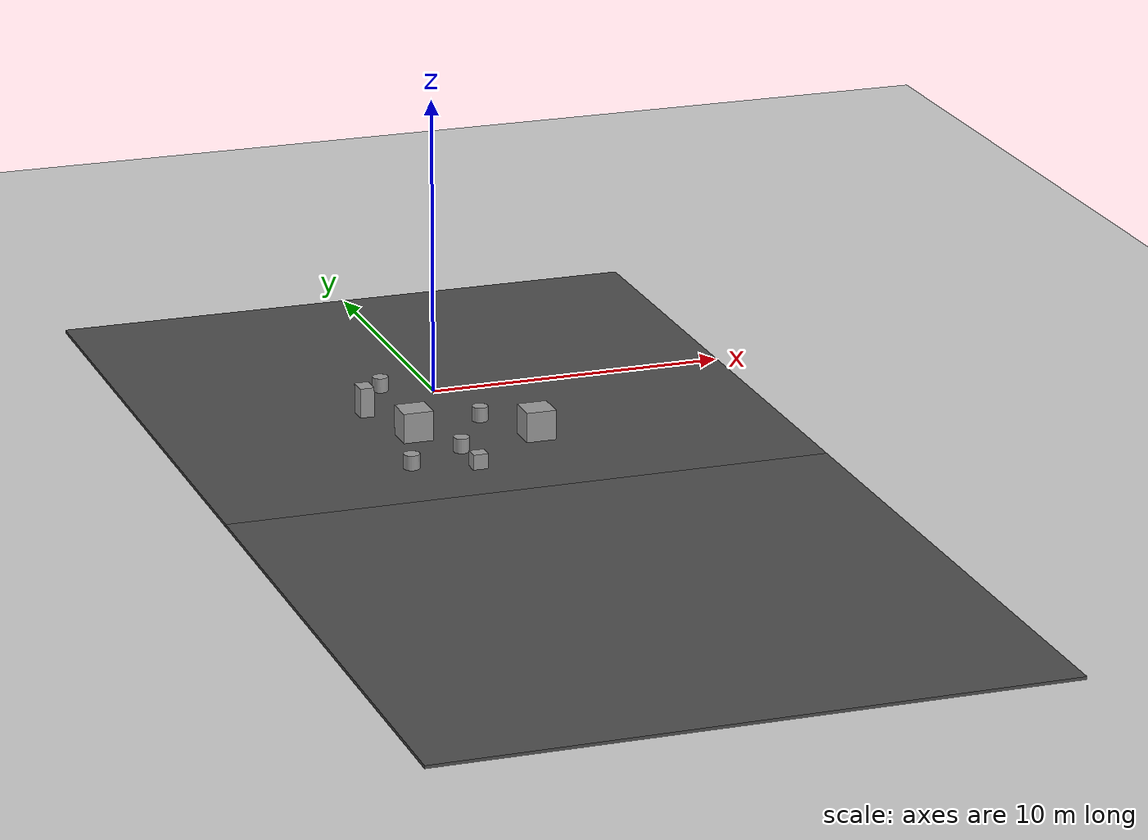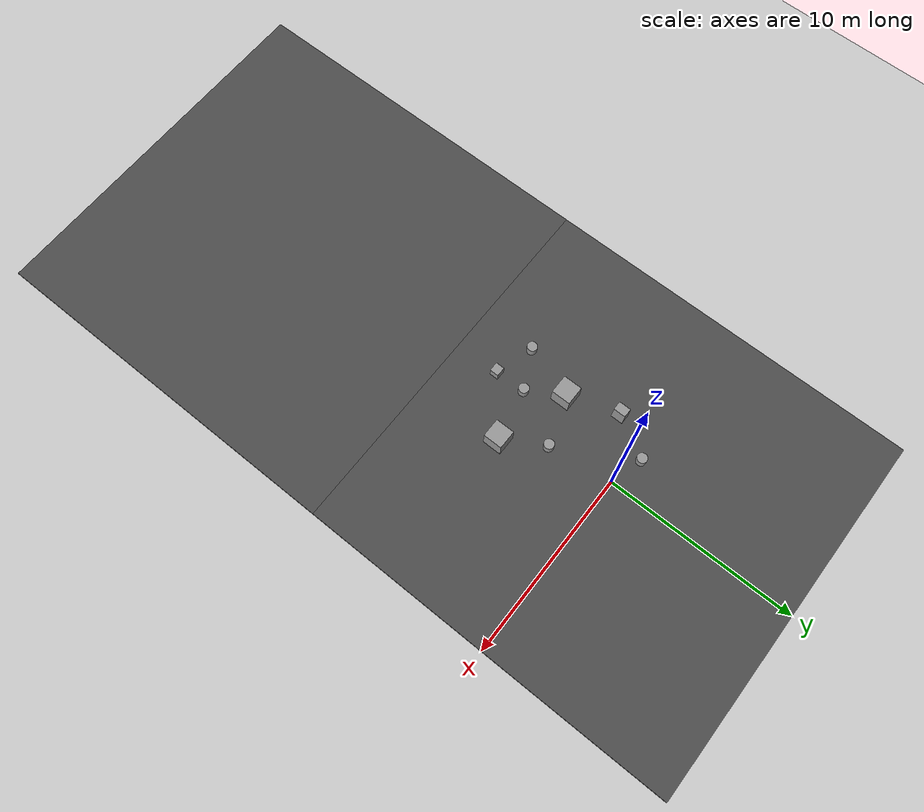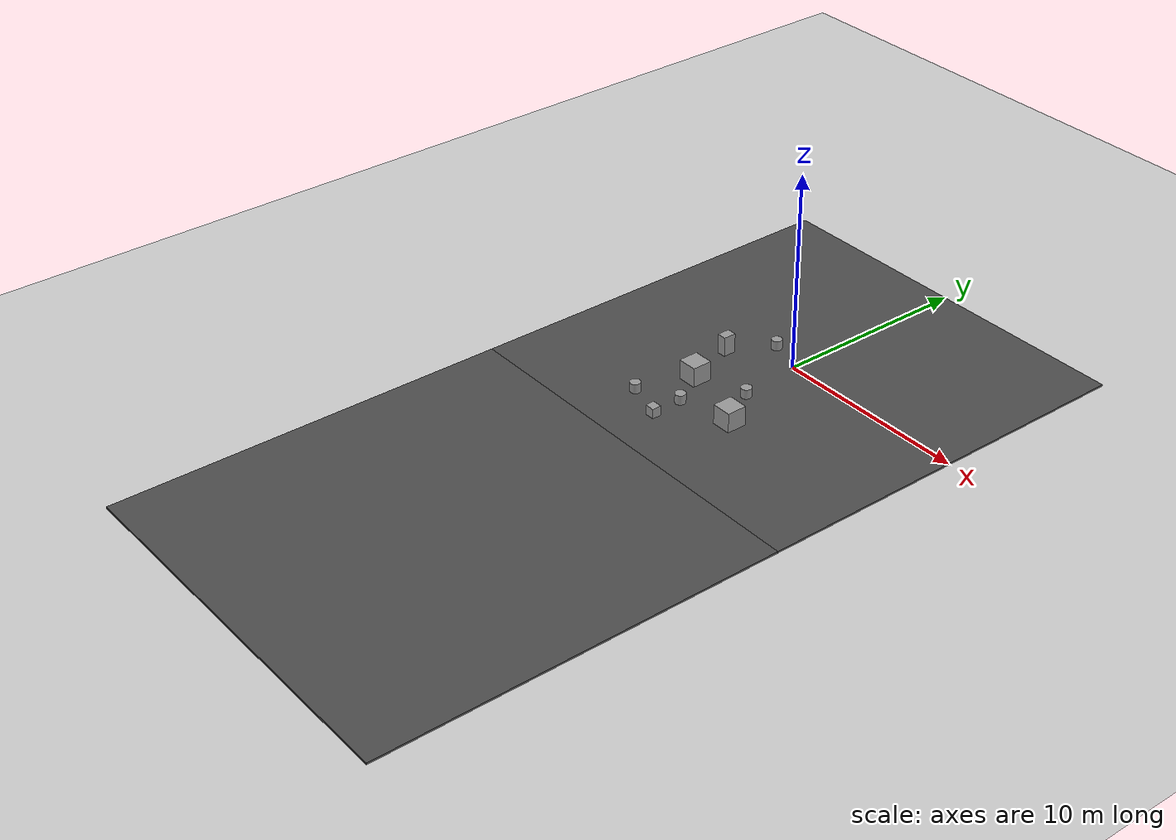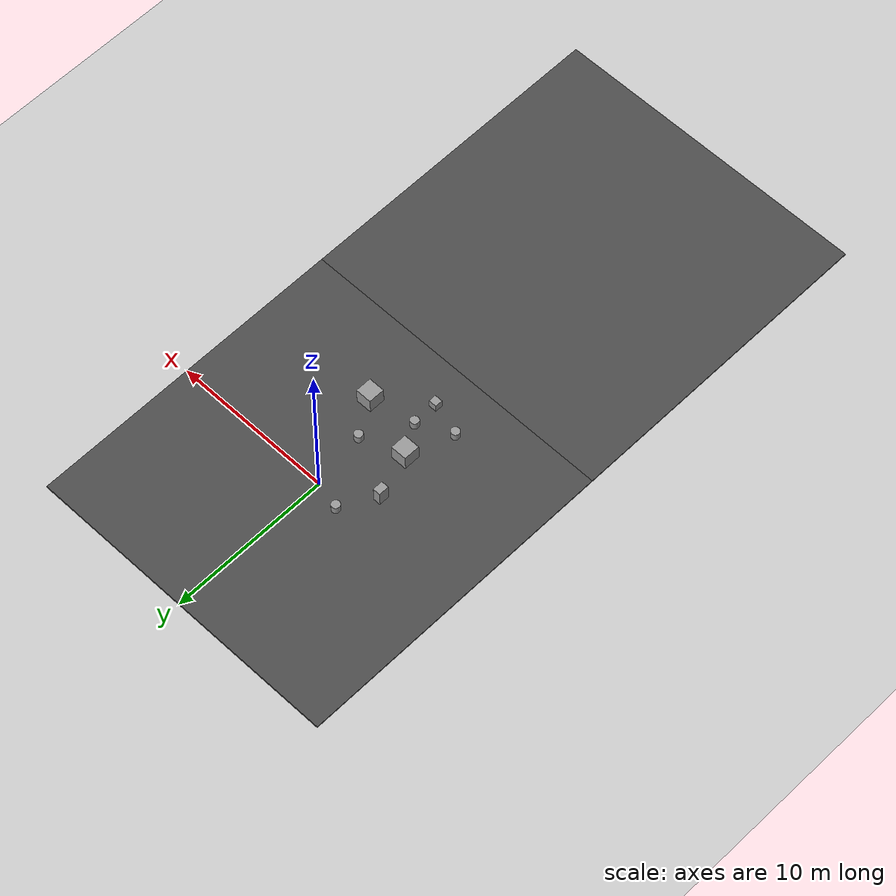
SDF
<sdf version="1.7">
 <world name="default">
  <model name="ground_plane">
   <static>1</static>
   <link name="link">
    <collision name="collision">
     <geometry><plane><normal>0 0 1</normal><size>100 100</size></plane></geometry>
     <surface>
      <contact><collide_bitmask>65535</collide_bitmask></contact>
      <friction><ode><mu>100</mu><mu2>50</mu2></ode></friction>
     </surface>
    </collision>
    <visual name="visual">
     <cast_shadows>0</cast_shadows>
     <geometry><plane><normal>0 0 1</normal><size>100 100</size></plane></geometry>
     <material>
      <script><uri>file://media/materials/scripts/gazebo.material</uri><name>Gazebo/Grey</name></script>
     </material>
    </visual>
   </link>
  </model>
  <model name="asphalt_plane">
   <static>1</static>
   <link name="link">
    <collision name="collision"><geometry><box><size>20 20 0.1</size></box></geometry></collision>
    <visual name="visual">
     <cast_shadows>0</cast_shadows>
     <geometry><box><size>20 20 0.1</size></box></geometry>
     <material>
      <script>
       <uri>model://asphalt_plane/materials/scripts</uri>
       <uri>model://asphalt_plane/materials/textures</uri>
       <name>vrc/asphalt</name>
      </script>
     </material>
    </visual>
   </link>
  </model>
  <model name="asphalt_plane_clone_1">
   <static>1</static>
   <link name="link">
    <collision name="collision"><geometry><box><size>20 20 0.1</size></box></geometry></collision>
    <visual name="visual">
     <cast_shadows>0</cast_shadows>
     <geometry><box><size>20 20 0.1</size></box></geometry>
     <material>
      <script>
       <uri>model://asphalt_plane/materials/scripts</uri>
       <uri>model://asphalt_plane/materials/textures</uri>
       <name>vrc/asphalt</name>
      </script>
     </material>
    </visual>
   </link>
   <pose>0 -20 0 0 -0 0</pose>
  </model>
  <model name="unit_cylinder_clone_1">
   <pose>-1.69362 0.491639 0.294835 0 -0 0.000353</pose>
   <link name="link">
    <inertial>
     <mass>1</mass>
     <inertia><ixx>0.145833</ixx><ixy>0</ixy><ixz>0</ixz><iyy>0.145833</iyy><iyz>0</iyz><izz>0.125</izz></inertia>
    </inertial>
    <collision name="collision">
     <geometry><cylinder><radius>0.264047</radius><length>0.48967</length></cylinder></geometry>
    </collision>
    <visual name="visual">
     <geometry><cylinder><radius>0.264047</radius><length>0.48967</length></cylinder></geometry>
     <material>
      <script><name>Gazebo/Grey</name><uri>file://media/materials/scripts/gazebo.material</uri></script>
     </material>
    </visual>
   </link>
  </model>
  <model name="unit_cylinder_clone_7">
   <pose>0.502169 -3.35697 0.294838 -3e-06 -9e-06 0.000227</pose>
   <link name="link">
    <inertial>
     <mass>1</mass>
     <inertia><ixx>0.145833</ixx><ixy>0</ixy><ixz>0</ixz><iyy>0.145833</iyy><iyz>0</iyz><izz>0.125</izz></inertia>
    </inertial>
    <collision name="collision">
     <geometry><cylinder><radius>0.264047</radius><length>0.48967</length></cylinder></geometry>
    </collision>
    <visual name="visual">
     <geometry><cylinder><radius>0.264047</radius><length>0.48967</length></cylinder></geometry>
     <material>
      <script><name>Gazebo/Grey</name><uri>file://media/materials/scripts/gazebo.material</uri></script>
     </material>
    </visual>
   </link>
  </model>
  <model name="unit_cylinder_clone_9">
   <pose>-1.00002 -5.99998 0.294835 0 -0 0.000156</pose>
   <link name="link">
    <inertial>
     <mass>1</mass>
     <inertia><ixx>0.145833</ixx><ixy>0</ixy><ixz>0</ixz><iyy>0.145833</iyy><iyz>0</iyz><izz>0.125</izz></inertia>
    </inertial>
    <collision name="collision">
     <geometry><cylinder><radius>0.264047</radius><length>0.48967</length></cylinder></geometry>
    </collision>
    <visual name="visual">
     <geometry><cylinder><radius>0.264047</radius><length>0.48967</length></cylinder></geometry>
     <material>
      <script><name>Gazebo/Grey</name><uri>file://media/materials/scripts/gazebo.material</uri></script>
     </material>
    </visual>
   </link>
  </model>
  <model name="unit_cylinder_clone_17">
   <pose>-3.00002 -6.99998 0.294825 0 0 -3.6e-05</pose>
   <link name="link">
    <inertial>
     <mass>1</mass>
     <inertia><ixx>0.145833</ixx><ixy>0</ixy><ixz>0</ixz><iyy>0.145833</iyy><iyz>0</iyz><izz>0.125</izz></inertia>
    </inertial>
    <collision name="collision">
     <geometry><cylinder><radius>0.264047</radius><length>0.48967</length></cylinder></geometry>
    </collision>
    <visual name="visual">
     <geometry><cylinder><radius>0.264047</radius><length>0.48967</length></cylinder></geometry>
     <material>
      <script><name>Gazebo/Grey</name><uri>file://media/materials/scripts/gazebo.material</uri></script>
     </material>
    </visual>
   </link>
  </model>
  <model name="unit_box_0_clone_1_clone_3">
   <pose>-0.962788 -7.60684 0.301356 0 -0 1e-06</pose>
   <link name="link">
    <inertial>
     <mass>1</mass>
     <inertia>
      <ixx>0.166667</ixx>
      <ixy>0</ixy>
      <ixz>0</ixz>
      <iyy>0.166667</iyy>
      <iyz>0</iyz>
      <izz>0.166667</izz>
     </inertia>
    </inertial>
    <collision name="collision">
     <geometry><box><size>0.495294 0.467832 0.502712</size></box></geometry>
    </collision>
    <visual name="visual">
     <geometry><box><size>0.495294 0.467832 0.502712</size></box></geometry>
     <material>
      <script><name>Gazebo/Grey</name><uri>file://media/materials/scripts/gazebo.material</uri></script>
     </material>
    </visual>
   </link>
  </model>
  <model name="unit_box_1">
   <pose>1.73473 -5.44839 0.55 -0 -0 -0</pose>
   <link name="link">
    <inertial>
     <mass>1</mass>
     <inertia>
      <ixx>0.166667</ixx>
      <ixy>0</ixy>
      <ixz>0</ixz>
      <iyy>0.166667</iyy>
      <iyz>0</iyz>
      <izz>0.166667</izz>
     </inertia>
    </inertial>
    <collision name="collision"><geometry><box><size>1 1 1</size></box></geometry></collision>
    <visual name="visual">
     <geometry><box><size>1 1 1</size></box></geometry>
     <material>
      <script><name>Gazebo/Grey</name><uri>file://media/materials/scripts/gazebo.material</uri></script>
     </material>
    </visual>
   </link>
  </model>
  <model name="unit_box_2">
   <pose>-2.0426 -4.2498 0.55 0 -0 0</pose>
   <link name="link">
    <inertial>
     <mass>1</mass>
     <inertia>
      <ixx>0.166667</ixx>
      <ixy>0</ixy>
      <ixz>0</ixz>
      <iyy>0.166667</iyy>
      <iyz>0</iyz>
      <izz>0.166667</izz>
     </inertia>
    </inertial>
    <collision name="collision"><geometry><box><size>1 1 1</size></box></geometry></collision>
    <visual name="visual">
     <geometry><box><size>1 1 1</size></box></geometry>
     <material>
      <script><name>Gazebo/Grey</name><uri>file://media/materials/scripts/gazebo.material</uri></script>
     </material>
    </visual>
   </link>
  </model>
  <model name="unit_box_3_clone_0">
   <pose>-2.8958 -1.60924 0.55 0 -0 0</pose>
   <link name="link">
    <inertial>
     <mass>1</mass>
     <inertia>
      <ixx>0.166667</ixx>
      <ixy>0</ixy>
      <ixz>0</ixz>
      <iyy>0.166667</iyy>
      <iyz>0</iyz>
      <izz>0.166667</izz>
     </inertia>
    </inertial>
    <collision name="collision"><geometry><box><size>0.473217 0.637104 1</size></box></geometry></collision>
    <visual name="visual">
     <geometry><box><size>0.473217 0.637104 1</size></box></geometry>
     <material>
      <script><name>Gazebo/Grey</name><uri>file://media/materials/scripts/gazebo.material</uri></script>
     </material>
    </visual>
   </link>
  </model>
 </world>
</sdf>
